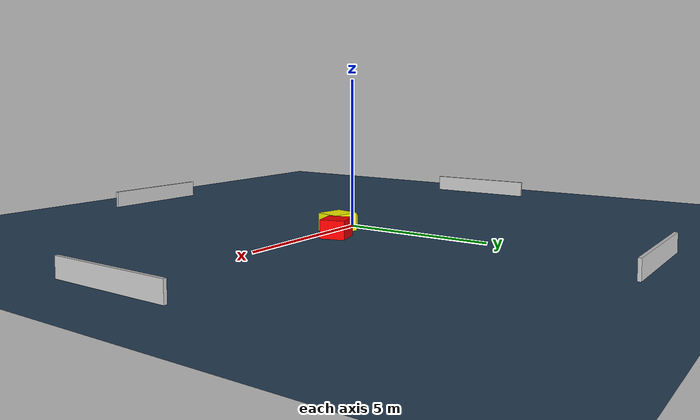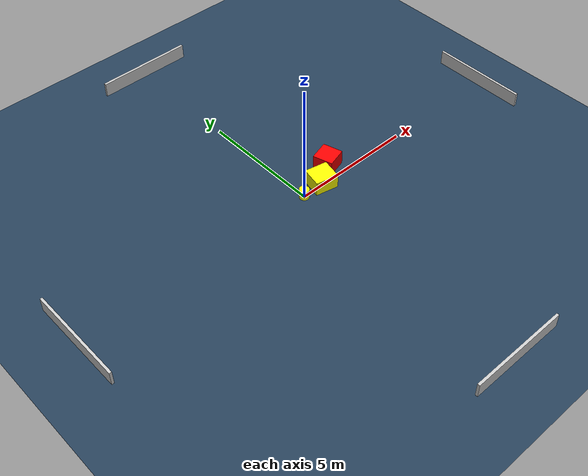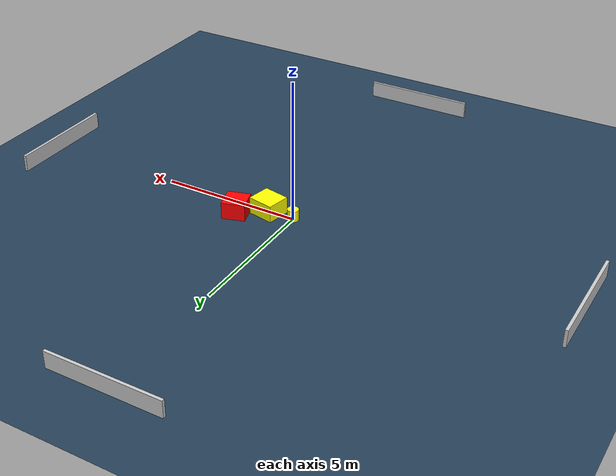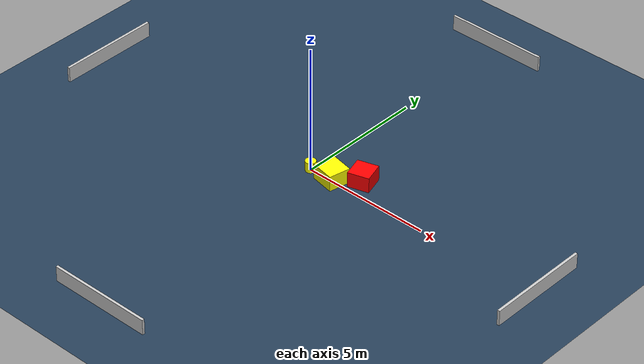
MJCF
<?xml version="1.0" ?>
<mujoco model="generated_environment">
  <option timestep="0.01" integrator="RK4" cone="elliptic"/>
  <default>
    <geom density="1"/>
  </default>
  <asset>
    <texture builtin="gradient" height="3072" name="skybox" rgb1="0.3 0.5 0.7" rgb2="0 0 0" type="skybox" width="512"/>
    <texture builtin="checker" height="300" name="groundplane" rgb1="0.2 0.3 0.4" rgb2="0.1 0.2 0.3" type="2d" width="300"/>
    <material name="groundplane" reflectance="0.2" texrepeat="5 5" texture="groundplane"/>
  </asset>
  <worldbody>
    <light dir="0 0 -1" directional="true" pos="0 0 1.5"/>
    <geom condim="3" friction="0.5 0.005 0.001" material="groundplane" name="floor" pos="0 0 0" size="0 0 0.05" type="plane"/>
    <body name="walls">
      <geom name="wall_1" condim="4" pos="-10.0 0.0 0.3" rgba="0.800000011920929 0.800000011920929 0.800000011920929 1.0" size="0.05 2.0 0.3" type="box"/>
      <geom name="wall_2" condim="4" pos="10.0 0.0 0.3" rgba="0.800000011920929 0.800000011920929 0.800000011920929 1.0" size="0.05 2.0 0.3" type="box"/>
      <geom name="wall_3" condim="4" pos="0.0 -10.0 0.3" rgba="0.800000011920929 0.800000011920929 0.800000011920929 1.0" size="2.0 0.05 0.3" type="box"/>
      <geom name="wall_4" condim="4" pos="0.0 10.0 0.3" rgba="0.800000011920929 0.800000011920929 0.800000011920929 1.0" size="2.0 0.05 0.3" type="box"/>
    </body>
    <body name="robot">
      <joint name="joint_x" type="slide" pos="0 0 0" axis="1 0 0"/>
      <joint name="joint_y" type="slide" pos="0 0 0" axis="0 1 0"/>
      <geom name="robot" type="cylinder" pos="0.0 0.0 0.2" size="0.2 0.2 0.0" mass="5.0" friction="1.0 0.005 0.0001" condim="4" rgba="1.0 1.0 0.0 1.0"/>
    </body>
    <body name="obstacle_1_movable">
      <geom name="obstacle_1_movable" condim="4" pos="0.9308019127171718 0.05432794775958519 0.3" euler="0 0 348.54112973636194" friction="0.0 0.005 0.001" rgba="1.0 1.0 0.0 1.0" size="0.46725471234459814 0.4225379812506825 0.3" type="box" mass="0.1"/>
      <joint type="free"/>
    </body>
    <body name="obstacle_2_static">
      <geom name="obstacle_2_static" condim="4" pos="1.8330158657120745 0.6586202784923135 0.3" euler="0 0 286.4863020344448" friction="0.0 0.005 0.001" rgba="1.0 0.0 0.0 1.0" size="0.4073194306571703 0.4075142361202733 0.3" type="box"/>
    </body>
  </worldbody>
  <actuator>
    <motor name="actuator_x" joint="joint_x" gear="1" ctrlrange="-1 1"/>
    <motor name="actuator_y" joint="joint_y" gear="1" ctrlrange="-1 1"/>
  </actuator>
</mujoco>
